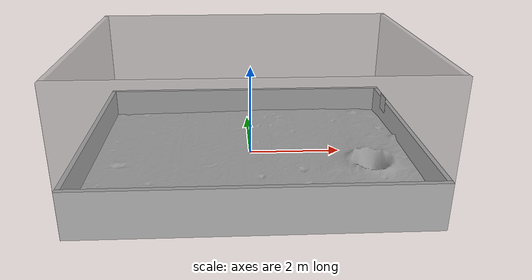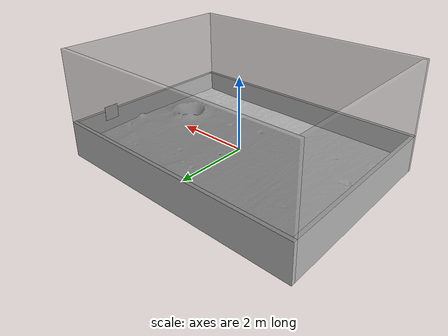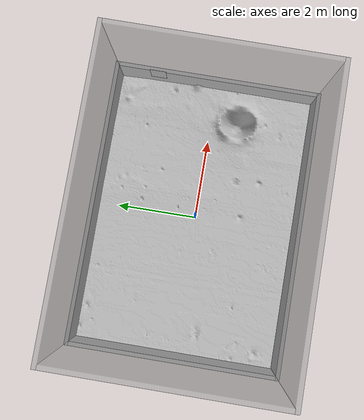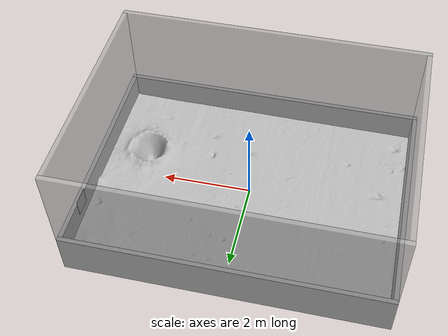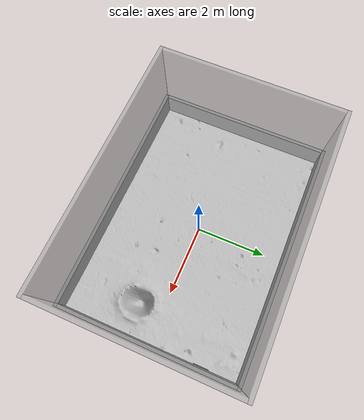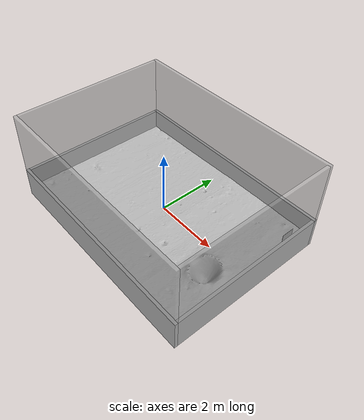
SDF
<sdf version="1.7">
 <world name="default">
  <light name="sun" type="directional">
   <pose>0 0 10 0 0 0</pose>
   <diffuse>0.4 0.4 0.4 1</diffuse>
   <specular>0.1 0.1 0.1 1</specular>
   <attenuation>
    <range>500</range>
    <constant>0.8</constant>
    <linear>0.02</linear>
    <quadratic>0.001</quadratic>
   </attenuation>
   <direction>-0.5 0.1 -0.9</direction>
  </light>
  <gravity>0 0 -9.81</gravity>
  <physics type="ode">
   <max_step_size>0.001</max_step_size>
   <real_time_factor>1</real_time_factor>
   <real_time_update_rate>1000</real_time_update_rate>
  </physics>
  <scene><ambient>0.4 0.4 0.4 1</ambient><background>0 0 0 255</background><shadows>1</shadows></scene>
  <model name="lunar_surface">
   <static>1</static>
   <link name="link">
    <collision name="lunar_surface_collision">
     <geometry><mesh><uri>model://lunar_surface/lunar_surface.stl</uri><scale>1 1 1</scale></mesh></geometry>
     <surface><friction><ode><mu>0.8</mu><mu2>0.8</mu2></ode></friction></surface>
    </collision>
    <visual name="lunar_surface">
     <geometry><mesh><uri>model://lunar_surface/lunar_surface.stl</uri><scale>1 1 1</scale></mesh></geometry>
     <material>
      <script>
       <uri>model://lunar_surface/materials/scripts</uri>
       <uri>model://lunar_surface/materials/textures</uri>
       <name>lunar_surface</name>
      </script>
     </material>
    </visual>
   </link>
  </model>
  <model name="arena_wall_long">
   <static>1</static>
   <link name="link">
    <collision name="arena_wall_long_collision">
     <geometry><box><size>7.08 0.1 1.0</size></box></geometry>
     <surface><friction><ode><mu>0.3</mu><mu2>0.3</mu2></ode></friction></surface>
    </collision>
    <visual name="arena_wall_long"><geometry><box><size>7.08 0.1 1.0</size></box></geometry></visual>
    <pose>0 -2.55 0.1 0 0 0</pose>
   </link>
  </model>
  <model name="arena_wall_long_2">
   <static>1</static>
   <link name="link">
    <collision name="arena_wall_long_2_collision">
     <geometry><box><size>7.08 0.1 1.0</size></box></geometry>
     <surface><friction><ode><mu>0.3</mu><mu2>0.3</mu2></ode></friction></surface>
    </collision>
    <visual name="arena_wall_long_2"><geometry><box><size>7.08 0.1 1.0</size></box></geometry></visual>
    <pose>0 2.55 0.1 0 0 0</pose>
   </link>
  </model>
  <model name="arena_wall_short">
   <static>1</static>
   <link name="link">
    <collision name="arena_wall_short_collision">
     <geometry><box><size>0.1 5 1.0</size></box></geometry>
     <surface><friction><ode><mu>0.3</mu><mu2>0.3</mu2></ode></friction></surface>
    </collision>
    <visual name="arena_wall_short"><geometry><box><size>0.1 5 1.0</size></box></geometry></visual>
    <pose>3.49 0 0.1 0 0 0</pose>
   </link>
  </model>
  <model name="arena_wall_short_2">
   <static>1</static>
   <link name="link">
    <collision name="arena_wall_short_2_collision">
     <geometry><box><size>0.1 5 1.0</size></box></geometry>
     <surface><friction><ode><mu>0.3</mu><mu2>0.3</mu2></ode></friction></surface>
    </collision>
    <visual name="arena_wall_short_2"><geometry><box><size>0.1 5 1.0</size></box></geometry></visual>
    <pose>-3.49 0 0.1 0 0 0</pose>
   </link>
  </model>
  <model name="arena_glass_short">
   <static>1</static>
   <link name="link">
    <collision name="arena_glass_short_collision">
     <geometry><box><size>0.1 5 2.0</size></box></geometry>
     <surface><friction><ode><mu>0.3</mu><mu2>0.3</mu2></ode></friction></surface>
    </collision>
    <visual name="arena_glass_short">
     <geometry><box><size>0.1 5 2.0</size></box></geometry>
     <material>
      <script><name>Gazebo/GreyTransparent</name><uri>file://media/materials/scripts/gazebo.material</uri></script>
     </material>
    </visual>
    <pose>3.49 0 1.6 0 0 0</pose>
   </link>
  </model>
  <model name="arena_glass_short_2">
   <link name="link">
    <static>1</static>
    <collision name="arena_glass_short_2_collision">
     <geometry><box><size>0.1 5 2.0</size></box></geometry>
     <surface><friction><ode><mu>0.3</mu><mu2>0.3</mu2></ode></friction></surface>
    </collision>
    <visual name="arena_glass_short_2">
     <geometry><box><size>0.1 5 2.0</size></box></geometry>
     <material>
      <script><name>Gazebo/GreyTransparent</name><uri>file://media/materials/scripts/gazebo.material</uri></script>
     </material>
    </visual>
    <pose>-3.49 0 1.6 0 0 0</pose>
   </link>
  </model>
  <model name="arena_glass_long">
   <static>1</static>
   <link name="link">
    <collision name="arena_glass_long_collision">
     <geometry><box><size>7.08 0.1 2</size></box></geometry>
     <surface><friction><ode><mu>0.3</mu><mu2>0.3</mu2></ode></friction></surface>
    </collision>
    <visual name="arena_glass_long">
     <geometry><box><size>7.08 0.1 2</size></box></geometry>
     <material>
      <script><name>Gazebo/GreyTransparent</name><uri>file://media/materials/scripts/gazebo.material</uri></script>
     </material>
    </visual>
    <pose>0 2.55 1.6 0 0 0</pose>
   </link>
  </model>
  <model name="arena_glass_long_2">
   <static>1</static>
   <link name="link">
    <collision name="arena_wall_short_2_collision">
     <geometry><box><size>7.08 0.1 2</size></box></geometry>
     <surface><friction><ode><mu>0.3</mu><mu2>0.3</mu2></ode></friction></surface>
    </collision>
    <visual name="arena_wall_short_2">
     <geometry><box><size>7.08 0.1 2</size></box></geometry>
     <material>
      <script><name>Gazebo/GreyTransparent</name><uri>file://media/materials/scripts/gazebo.material</uri></script>
     </material>
    </visual>
    <pose>0 -2.55 1.6 0 0 0</pose>
   </link>
  </model>
  <model name="tag_36_11_00007">
   <link name="link">
    <pose>3.4 1.5 0.55 0 -1.58 0</pose>
    <visual name="tag_36_11_00007">
     <geometry><box><size>0.4 0.4 0.005</size></box></geometry>
     <material>
      <script>
       <uri>model://apriltags/tag_36_11_00007/materials/scripts</uri>
       <uri>model://apriltags/tag_36_11_00007/materials/textures</uri>
       <name>tag_36_11_00007</name>
      </script>
     </material>
    </visual>
    <collision name="tag_36_11_00007_collision">
     <geometry><box><size>0.4 0.4 0.005</size></box></geometry>
    </collision>
   </link>
   <static>1</static>
  </model>
 </world>
</sdf>
